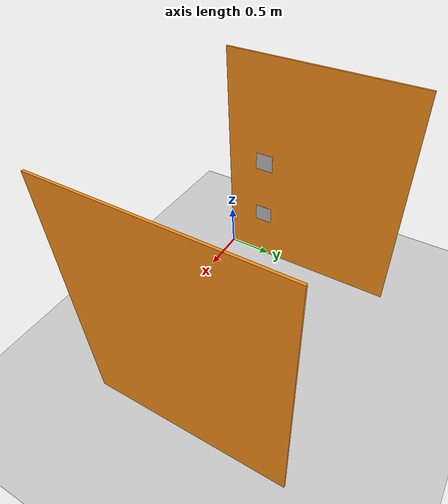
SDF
<?xml version='1.0' encoding='utf-8'?>
<sdf version="1.5">
  <world name="default">
    <include>
      <uri>model://sun</uri>
    </include>
    <include>
      <uri>model://ground_plane</uri>
      <pose>0 0 -0.001 0 0 0</pose>
    </include>
    <include>
      <uri>model://marker_aruco-1</uri>
      <pose frame="''">2.45505 1.27 0.3 -1.57079632679 1.57079632679 -1.57079632679</pose>
    </include>
    <include>
      <uri>model://marker_aruco-2</uri>
      <pose frame="''">0.015050000000000001 0.44 0.62 -1.57079632679 1.57079632679 -1.57079632679</pose>
    </include>
    <include>
      <uri>model://marker_aruco-4</uri>
      <pose frame="''">0.015050000000000001 0.44 1.33 -1.57079632679 1.57079632679 -1.57079632679</pose>
    </include>
    <model name="wall_0">
      <pose frame="''">0 0 0 0 0 0</pose>
      <link name="link_0">
        <pose frame="">0 0 0 0 0 0</pose>
        <gravity>0</gravity>
        <self_collide>0</self_collide>
        <kinematic>1</kinematic>
        <visual name="wall_0_visual_0">
          <pose frame="">0.0 1.0 1.25 0 0 1.57079632679</pose>
          <geometry>
            <box>
              <size>2.0 0.02 2.5</size>
            </box>
          </geometry>
          <material>
            <script>
              <uri>file://media/materials/scripts/gazebo.material</uri>
              <name>Gazebo/Orange</name>
            </script>
          </material>
          <cast_shadows>1</cast_shadows>
          <transparency>0</transparency>
        </visual>
        <collision name="wall_0_collision_0">
          <pose frame="">0.0 1.0 1.25 0 0 1.57079632679</pose>
          <geometry>
            <box>
              <size>2.0 0.02 2.5</size>
            </box>
          </geometry>
        </collision>
      </link>
    </model>
    <model name="wall_1">
      <pose frame="''">0 0 0 0 0 0</pose>
      <link name="link_0">
        <pose frame="">0 0 0 0 0 0</pose>
        <gravity>0</gravity>
        <self_collide>0</self_collide>
        <kinematic>1</kinematic>
        <visual name="wall_1_visual_0">
          <pose frame="">2.45 1.0 1.25 0 0 1.57079632679</pose>
          <geometry>
            <box>
              <size>2.0 0.02 2.5</size>
            </box>
          </geometry>
          <material>
            <script>
              <uri>file://media/materials/scripts/gazebo.material</uri>
              <name>Gazebo/Orange</name>
            </script>
          </material>
          <cast_shadows>1</cast_shadows>
          <transparency>0</transparency>
        </visual>
        <collision name="wall_1_collision_0">
          <pose frame="">2.45 1.0 1.25 0 0 1.57079632679</pose>
          <geometry>
            <box>
              <size>2.0 0.02 2.5</size>
            </box>
          </geometry>
        </collision>
      </link>
    </model>
    <include>
      <uri>model://sign_airport</uri>
      <pose frame="''">0.005 0.44 0.95 -1.57079632679 1.57079632679 1.57079632679</pose>
    </include>
    <include>
      <uri>model://sign_dangerous_curve_left</uri>
      <pose frame="''">2.445 0.86 0.3 -1.57079632679 1.57079632679 1.57079632679</pose>
    </include>
    <physics default="0" name="default_physics" type="ode">
      <gravity>0 0 -9.8066</gravity>
      <ode>
        <solver>
          <type>quick</type>
          <iters>20</iters>
          <sor>1.3</sor>
          <use_dynamic_moi_rescaling>0</use_dynamic_moi_rescaling>
        </solver>
        <constraints>
          <cfm>0</cfm>
          <erp>0.2</erp>
          <contact_max_correcting_vel>100</contact_max_correcting_vel>
          <contact_surface_layer>0.001</contact_surface_layer>
        </constraints>
      </ode>
      <max_step_size>0.002</max_step_size>
      <real_time_factor>1</real_time_factor>
      <real_time_update_rate>500</real_time_update_rate>
      <magnetic_field>6e-06 2.3e-05 -4.2e-05</magnetic_field>
    </physics>
  </world>
</sdf>

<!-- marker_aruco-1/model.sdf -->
<sdf version="1.5">
  <model name="marker_aruco-1">
    <pose frame="">0 0 0 0 0 0</pose>
    <link name="link_0">
      <pose frame="">0 0 0 0 0 0</pose>
      <visual name="visual">
        <geometry>
          <box>
            <size>0.197 0.197 1e-5</size>
          </box>
        </geometry>
        <material>
          <script>
            <uri>model://marker_aruco-1/materials/scripts</uri>
            <uri>model://marker_aruco-1/materials/textures</uri>
            <name>marker_aruco-1/marker</name>
          </script>
        </material>
        <pose frame="">0 0 0.001 0 0 0</pose>
        <cast_shadows>1</cast_shadows>
        <transparency>0</transparency>
      </visual>
      <collision name="collision">
        <pose frame="">0 0 0.001 0 0 0</pose>
        <geometry>
          <box>
            <size>0.197 0.197 1e-5</size>
          </box>
        </geometry>
      </collision>
      <visual name="visual_backside">
        <pose frame="">0 0 0 0 0 0</pose>
        <geometry>
          <box>
            <size>0.197 0.197 1e-5</size>
          </box>
        </geometry>
        <material>
          <script>Gazebo/Grey</script>
        </material>
      </visual>
      <collision name="collision_backside">
        <pose frame="">0 0 0 0 0 0</pose>
        <geometry>
          <box>
            <size>0.197 0.197 1e-5</size>
          </box>
        </geometry>
      </collision>
    </link>
    <static>1</static>
    <allow_auto_disable>1</allow_auto_disable>
  </model>
</sdf>

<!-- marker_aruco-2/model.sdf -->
<sdf version="1.5">
  <model name="marker_aruco-2">
    <pose frame="">0 0 0 0 0 0</pose>
    <link name="link_0">
      <pose frame="">0 0 0 0 0 0</pose>
      <visual name="visual">
        <geometry>
          <box>
            <size>0.197 0.197 1e-5</size>
          </box>
        </geometry>
        <material>
          <script>
            <uri>model://marker_aruco-2/materials/scripts</uri>
            <uri>model://marker_aruco-2/materials/textures</uri>
            <name>marker_aruco-2/marker</name>
          </script>
        </material>
        <pose frame="">0 0 0.001 0 0 0</pose>
        <cast_shadows>1</cast_shadows>
        <transparency>0</transparency>
      </visual>
      <collision name="collision">
        <pose frame="">0 0 0.001 0 0 0</pose>
        <geometry>
          <box>
            <size>0.197 0.197 1e-5</size>
          </box>
        </geometry>
      </collision>
      <visual name="visual_backside">
        <pose frame="">0 0 0 0 0 0</pose>
        <geometry>
          <box>
            <size>0.197 0.197 1e-5</size>
          </box>
        </geometry>
        <material>
          <script>Gazebo/Grey</script>
        </material>
      </visual>
      <collision name="collision_backside">
        <pose frame="">0 0 0 0 0 0</pose>
        <geometry>
          <box>
            <size>0.197 0.197 1e-5</size>
          </box>
        </geometry>
      </collision>
    </link>
    <static>1</static>
    <allow_auto_disable>1</allow_auto_disable>
  </model>
</sdf>

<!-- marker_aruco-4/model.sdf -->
<sdf version="1.5">
  <model name="marker_aruco-4">
    <pose frame="">0 0 0 0 0 0</pose>
    <link name="link_0">
      <pose frame="">0 0 0 0 0 0</pose>
      <visual name="visual">
        <geometry>
          <box>
            <size>0.197 0.197 1e-5</size>
          </box>
        </geometry>
        <material>
          <script>
            <uri>model://marker_aruco-4/materials/scripts</uri>
            <uri>model://marker_aruco-4/materials/textures</uri>
            <name>marker_aruco-4/marker</name>
          </script>
        </material>
        <pose frame="">0 0 0.001 0 0 0</pose>
        <cast_shadows>1</cast_shadows>
        <transparency>0</transparency>
      </visual>
      <collision name="collision">
        <pose frame="">0 0 0.001 0 0 0</pose>
        <geometry>
          <box>
            <size>0.197 0.197 1e-5</size>
          </box>
        </geometry>
      </collision>
      <visual name="visual_backside">
        <pose frame="">0 0 0 0 0 0</pose>
        <geometry>
          <box>
            <size>0.197 0.197 1e-5</size>
          </box>
        </geometry>
        <material>
          <script>Gazebo/Grey</script>
        </material>
      </visual>
      <collision name="collision_backside">
        <pose frame="">0 0 0 0 0 0</pose>
        <geometry>
          <box>
            <size>0.197 0.197 1e-5</size>
          </box>
        </geometry>
      </collision>
    </link>
    <static>1</static>
    <allow_auto_disable>1</allow_auto_disable>
  </model>
</sdf>

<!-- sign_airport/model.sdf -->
<sdf version="1.5">
  <model name="sign_airport">
    <pose frame="">0 0 0 0 0 0</pose>
    <link name="link_0">
      <pose frame="">0 0 0 0 0 0</pose>
      <visual name="visual">
        <geometry>
          <box>
            <size>0.2 0.2 1e-5</size>
          </box>
        </geometry>
        <material>
          <script>
            <uri>model://sign_airport/materials/scripts</uri>
            <uri>model://sign_airport/materials/textures</uri>
            <name>sign_airport/sign</name>
          </script>
        </material>
        <pose frame="">0 0 0.001 0 0 0</pose>
        <cast_shadows>1</cast_shadows>
        <transparency>0</transparency>
      </visual>
      <collision name="collision">
        <pose frame="">0 0 0.001 0 0 0</pose>
        <geometry>
          <box>
            <size>0.2 0.2 1e-5</size>
          </box>
        </geometry>
      </collision>
      <visual name="visual_backside">
        <pose frame="">0 0 0 0 0 0</pose>
        <geometry>
          <box>
            <size>0.2 0.2 1e-5</size>
          </box>
        </geometry>
        <material>
          <script>Gazebo/Grey</script>
        </material>
      </visual>
      <collision name="collision_backside">
        <pose frame="">0 0 0 0 0 0</pose>
        <geometry>
          <box>
            <size>0.2 0.2 1e-5</size>
          </box>
        </geometry>
      </collision>
    </link>
    <static>1</static>
    <allow_auto_disable>1</allow_auto_disable>
  </model>
</sdf>

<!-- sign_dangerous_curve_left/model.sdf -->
<sdf version="1.5">
  <model name="sign_dangerous_curve_left">
    <pose frame="">0 0 0 0 0 0</pose>
    <link name="link_0">
      <pose frame="">0 0 0 0 0 0</pose>
      <visual name="visual">
        <geometry>
          <box>
            <size>0.2 0.2 1e-5</size>
          </box>
        </geometry>
        <material>
          <script>
            <uri>model://sign_dangerous_curve_left/materials/scripts</uri>
            <uri>model://sign_dangerous_curve_left/materials/textures</uri>
            <name>sign_dangerous_curve_left/sign</name>
          </script>
        </material>
        <pose frame="">0 0 0.001 0 0 0</pose>
        <cast_shadows>1</cast_shadows>
        <transparency>0</transparency>
      </visual>
      <collision name="collision">
        <pose frame="">0 0 0.001 0 0 0</pose>
        <geometry>
          <box>
            <size>0.2 0.2 1e-5</size>
          </box>
        </geometry>
      </collision>
      <visual name="visual_backside">
        <pose frame="">0 0 0 0 0 0</pose>
        <geometry>
          <box>
            <size>0.2 0.2 1e-5</size>
          </box>
        </geometry>
        <material>
          <script>Gazebo/Grey</script>
        </material>
      </visual>
      <collision name="collision_backside">
        <pose frame="">0 0 0 0 0 0</pose>
        <geometry>
          <box>
            <size>0.2 0.2 1e-5</size>
          </box>
        </geometry>
      </collision>
    </link>
    <static>1</static>
    <allow_auto_disable>1</allow_auto_disable>
  </model>
</sdf>
